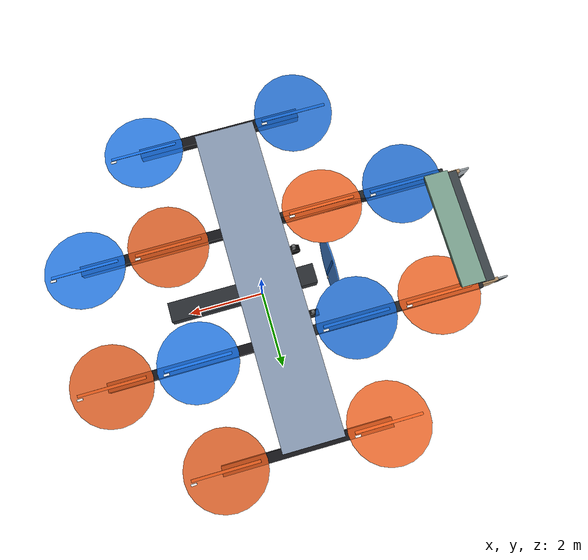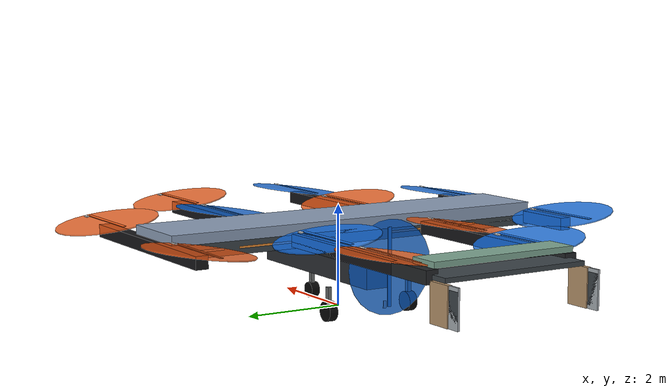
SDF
<?xml version="1.0" encoding="UTF-8"?>
<sdf version='1.10'>
  <model name='teTra_mk-7_EM2'>
    <pose>0 0 0.80 0 0 0</pose>
    <self_collide>false</self_collide>
    <static>false</static>

    <link name='base_link'>
      <enable_wind>true</enable_wind>
      <pose>0 0 0 0 0 0</pose>
      <inertial>
        <pose>0 0 -0.20 0 0 0</pose>
        <mass>1293.575</mass>
        <inertia>
          <ixx>4393.261707</ixx>
          <ixy>0.000000</ixy>
          <ixz>-132.340036</ixz>
          <iyy>4262.626834</iyy>
          <iyz>-0.000000</iyz>
          <izz>8561.621614</izz>
        </inertia>
      </inertial>
      <collision name='fuselage_collision'>
        <pose>0.5 0 0 0 0 0</pose>
        <geometry>
          <box>
            <size>3.8 0.5 0.45</size>
          </box>
        </geometry>
        <surface>
          <contact>
            <ode>
              <kp>100000</kp>
              <kd>1.0</kd>
              <max_vel>0.1</max_vel>
              <min_depth>0.001</min_depth>
            </ode>
          </contact>
          <friction>
            <ode />
          </friction>
        </surface>
      </collision>
      <visual name='fuselage_visual'>
        <!-- Shortened rear for pusher clearance (see fuselage_collision). 3.8 long, centered x=+0.5. -->
        <pose>0.5 0 0 0 0 0</pose>
        <geometry>
          <box>
            <size>3.8 0.5 0.45</size>
          </box>
        </geometry>
        <material>
          <ambient>0.17 0.18 0.20 1</ambient>
          <diffuse>0.17 0.18 0.20 1</diffuse>
        </material>
      </visual>
      <!-- Simple fixed landing gear from CAD: 2.1 m wheelbase, 1.8 m main track, 15 in main wheels. -->
      <collision name='main_landing_gear_left_strut_collision'>
        <pose>-1.10 0.90 -0.380 0 0 0</pose>
        <geometry><box><size>0.080 0.080 0.460</size></box></geometry>
      </collision>
      <visual name='main_landing_gear_left_strut_visual'>
        <pose>-1.10 0.90 -0.380 0 0 0</pose>
        <geometry><box><size>0.080 0.080 0.460</size></box></geometry>
        <material><ambient>0.42 0.43 0.43 1</ambient><diffuse>0.42 0.43 0.43 1</diffuse></material>
      </visual>
      <collision name='main_landing_gear_right_strut_collision'>
        <pose>-1.10 -0.90 -0.380 0 0 0</pose>
        <geometry><box><size>0.080 0.080 0.460</size></box></geometry>
      </collision>
      <visual name='main_landing_gear_right_strut_visual'>
        <pose>-1.10 -0.90 -0.380 0 0 0</pose>
        <geometry><box><size>0.080 0.080 0.460</size></box></geometry>
        <material><ambient>0.42 0.43 0.43 1</ambient><diffuse>0.42 0.43 0.43 1</diffuse></material>
      </visual>
      <collision name='nose_landing_gear_strut_collision'>
        <pose>1.00 0 -0.400 0 0 0</pose>
        <geometry><box><size>0.080 0.080 0.500</size></box></geometry>
      </collision>
      <visual name='nose_landing_gear_strut_visual'>
        <pose>1.00 0 -0.400 0 0 0</pose>
        <geometry><box><size>0.080 0.080 0.500</size></box></geometry>
        <material><ambient>0.42 0.43 0.43 1</ambient><diffuse>0.42 0.43 0.43 1</diffuse></material>
      </visual>
      <collision name='main_landing_gear_left_wheel_collision'>
        <pose>-1.10 0.90 -0.6095 1.5707963268 0 0</pose>
        <geometry><cylinder><length>0.1696</length><radius>0.1905</radius></cylinder></geometry>
        <surface>
          <contact><ode><kp>1000000</kp><kd>10</kd><max_vel>0.1</max_vel><min_depth>0.001</min_depth></ode></contact>
          <friction><ode><mu>0.8</mu><mu2>0.8</mu2></ode></friction>
        </surface>
      </collision>
      <visual name='main_landing_gear_left_wheel_visual'>
        <pose>-1.10 0.90 -0.6095 1.5707963268 0 0</pose>
        <geometry><cylinder><length>0.1696</length><radius>0.1905</radius></cylinder></geometry>
        <material><ambient>0.03 0.03 0.03 1</ambient><diffuse>0.03 0.03 0.03 1</diffuse></material>
      </visual>
      <collision name='main_landing_gear_right_wheel_collision'>
        <pose>-1.10 -0.90 -0.6095 1.5707963268 0 0</pose>
        <geometry><cylinder><length>0.1696</length><radius>0.1905</radius></cylinder></geometry>
        <surface>
          <contact><ode><kp>1000000</kp><kd>10</kd><max_vel>0.1</max_vel><min_depth>0.001</min_depth></ode></contact>
          <friction><ode><mu>0.8</mu><mu2>0.8</mu2></ode></friction>
        </surface>
      </collision>
      <visual name='main_landing_gear_right_wheel_visual'>
        <pose>-1.10 -0.90 -0.6095 1.5707963268 0 0</pose>
        <geometry><cylinder><length>0.1696</length><radius>0.1905</radius></cylinder></geometry>
        <material><ambient>0.03 0.03 0.03 1</ambient><diffuse>0.03 0.03 0.03 1</diffuse></material>
      </visual>
      <collision name='nose_landing_gear_wheel_collision'>
        <pose>1.00 0 -0.6476 1.5707963268 0 0</pose>
        <geometry><cylinder><length>0.1800</length><radius>0.1524</radius></cylinder></geometry>
        <surface>
          <contact><ode><kp>1000000</kp><kd>10</kd><max_vel>0.1</max_vel><min_depth>0.001</min_depth></ode></contact>
          <friction><ode><mu>0.8</mu><mu2>0.8</mu2></ode></friction>
        </surface>
      </collision>
      <visual name='nose_landing_gear_wheel_visual'>
        <pose>1.00 0 -0.6476 1.5707963268 0 0</pose>
        <geometry><cylinder><length>0.1800</length><radius>0.1524</radius></cylinder></geometry>
        <material><ambient>0.03 0.03 0.03 1</ambient><diffuse>0.03 0.03 0.03 1</diffuse></material>
      </visual>
      <visual name='main_wing_visual'>
        <pose>-0.135 0 0.730 0 0 0</pose>
        <geometry>
          <box>
            <size>1.500 8.000 0.255</size>
          </box>
        </geometry>
        <material>
          <ambient>0.24 0.27 0.29 1</ambient>
          <diffuse>0.24 0.27 0.29 1</diffuse>
        </material>
      </visual>
      <visual name='left_tail_boom_visual'>
        <pose>-2.789 1.45 0.760 0 0 0</pose>
        <geometry><box><size>4.708 0.240 0.240</size></box></geometry>
        <material><ambient>0.14 0.15 0.16 1</ambient>
          <diffuse>0.14 0.15 0.16 1</diffuse></material>
      </visual>
      <visual name='right_tail_boom_visual'>
        <pose>-2.789 -1.45 0.760 0 0 0</pose>
        <geometry><box><size>4.708 0.240 0.240</size></box></geometry>
        <material><ambient>0.14 0.15 0.16 1</ambient>
          <diffuse>0.14 0.15 0.16 1</diffuse></material>
      </visual>
      <visual name='horizontal_tail_visual'>
        <pose>-5.143 0 0.760 0 0 0</pose>
        <geometry>
          <box>
            <size>0.716 2.900 0.086</size>
          </box>
        </geometry>
        <material>
          <ambient>0.24 0.27 0.29 1</ambient>
          <diffuse>0.24 0.27 0.29 1</diffuse>
        </material>
      </visual>
      <visual name='right_vertical_tail_visual'>
        <pose>-5.503 1.45 0.358 0 0 0</pose>
        <geometry><box><size>0.720 0.040 0.564</size></box></geometry>
        <material><ambient>0.24 0.27 0.29 1</ambient><diffuse>0.24 0.27 0.29 1</diffuse></material>
      </visual>
      <visual name='left_vertical_tail_visual'>
        <pose>-5.503 -1.45 0.358 0 0 0</pose>
        <geometry><box><size>0.720 0.040 0.564</size></box></geometry>
        <material><ambient>0.24 0.27 0.29 1</ambient><diffuse>0.24 0.27 0.29 1</diffuse></material>
      </visual>
      <visual name='left_motor_beam_inner'>
        <pose>0 1.45 0.760 0 0 0</pose>
        <geometry>
          <box>
            <size>8.30 0.240 0.240</size>
          </box>
        </geometry>
        <material>
          <ambient>0.09 0.09 0.10 1</ambient>
          <diffuse>0.09 0.09 0.10 1</diffuse>
        </material>
      </visual>
      <visual name='right_motor_beam_inner'>
        <pose>0 -1.45 0.760 0 0 0</pose>
        <geometry>
          <box>
            <size>8.30 0.240 0.240</size>
          </box>
        </geometry>
        <material>
          <ambient>0.09 0.09 0.10 1</ambient>
          <diffuse>0.09 0.09 0.10 1</diffuse>
        </material>
      </visual>
      <visual name='left_motor_beam_outer'>
        <pose>0 4.0 0.760 0 0 0</pose>
        <geometry>
          <box>
            <size>4.10 0.240 0.240</size>
          </box>
        </geometry>
        <material>
          <ambient>0.09 0.09 0.10 1</ambient>
          <diffuse>0.09 0.09 0.10 1</diffuse>
        </material>
      </visual>
      <visual name='right_motor_beam_outer'>
        <pose>0 -4.0 0.760 0 0 0</pose>
        <geometry>
          <box>
            <size>4.10 0.240 0.240</size>
          </box>
        </geometry>
        <material>
          <ambient>0.09 0.09 0.10 1</ambient>
          <diffuse>0.09 0.09 0.10 1</diffuse>
        </material>
      </visual>
      <gravity>1</gravity>
      <velocity_decay />
      <self_collide>0</self_collide>

      <sensor name="imu_sensor" type="imu">
        <always_on>1</always_on>
        <update_rate>250</update_rate>
        <imu>
          <angular_velocity>
            <x>
              <noise type="gaussian">
                <mean>0</mean>
                <stddev>0.0003394</stddev>
                <dynamic_bias_stddev>3.8785e-05</dynamic_bias_stddev>
                <dynamic_bias_correlation_time>1000</dynamic_bias_correlation_time>
              </noise>
            </x>
            <y>
              <noise type="gaussian">
                <mean>0</mean>
                <stddev>0.0003394</stddev>
                <dynamic_bias_stddev>3.8785e-05</dynamic_bias_stddev>
                <dynamic_bias_correlation_time>1000</dynamic_bias_correlation_time>
              </noise>
            </y>
            <z>
              <noise type="gaussian">
                <mean>0</mean>
                <stddev>0.0003394</stddev>
                <dynamic_bias_stddev>3.8785e-05</dynamic_bias_stddev>
                <dynamic_bias_correlation_time>1000</dynamic_bias_correlation_time>
              </noise>
            </z>
          </angular_velocity>
          <linear_acceleration>
            <x>
              <noise type="gaussian">
                <mean>0</mean>
                <stddev>0.004</stddev>
                <dynamic_bias_stddev>0.006</dynamic_bias_stddev>
                <dynamic_bias_correlation_time>300</dynamic_bias_correlation_time>
              </noise>
            </x>
            <y>
              <noise type="gaussian">
                <mean>0</mean>
                <stddev>0.004</stddev>
                <dynamic_bias_stddev>0.006</dynamic_bias_stddev>
                <dynamic_bias_correlation_time>300</dynamic_bias_correlation_time>
              </noise>
            </y>
            <z>
              <noise type="gaussian">
                <mean>0</mean>
                <stddev>0.004</stddev>
                <dynamic_bias_stddev>0.006</dynamic_bias_stddev>
                <dynamic_bias_correlation_time>300</dynamic_bias_correlation_time>
              </noise>
            </z>
          </linear_acceleration>
        </imu>
      </sensor>
      <sensor name="air_pressure_sensor" type="air_pressure">
        <always_on>1</always_on>
        <update_rate>50</update_rate>
        <air_pressure>
          <pressure>
            <noise type="gaussian">
              <mean>0</mean>
              <stddev>0.01</stddev>
            </noise>
          </pressure>
        </air_pressure>
      </sensor>
      <sensor name="magnetometer_sensor" type="magnetometer">
        <always_on>1</always_on>
        <update_rate>100</update_rate>
        <magnetometer>
          <x>
            <noise type="gaussian">
              <stddev>0.0001</stddev>
            </noise>
          </x>
          <y>
            <noise type="gaussian">
              <stddev>0.0001</stddev>
            </noise>
          </y>
          <z>
            <noise type="gaussian">
              <stddev>0.0001</stddev>
            </noise>
          </z>
        </magnetometer>
      </sensor>
      <sensor name="navsat_sensor" type="navsat">
        <always_on>1</always_on>
        <update_rate>30</update_rate>
      </sensor>
      <!-- Chase camera on a rigid boom behind+above the vehicle (tail-chase view),
           with an on-board video recorder triggered via the /chase/record_video service. -->
      <sensor name="chase_cam" type="camera">
        <pose>-11 0 4.2 0 0.34 0</pose>
        <camera>
          <horizontal_fov>1.05</horizontal_fov>
          <image><width>1280</width><height>720</height></image>
          <clip><near>0.1</near><far>4000</far></clip>
        </camera>
        <always_on>1</always_on>
        <update_rate>25</update_rate>
        <topic>chase_cam</topic>
        <plugin filename="gz-sim-camera-video-recorder-system" name="gz::sim::systems::CameraVideoRecorder">
          <service>/chase/record_video</service>
          <fps>25</fps>
        </plugin>
      </sensor>
    </link>

    <!-- H4T130 motor (13.2 kg) + ESC (2.3 kg) masses. ESC position is assumed colocated with the motor. -->
    <link name='motor_esc_0'>
      <pose>4.03 1.45 0.93 0 0 0</pose>
      <inertial>
        <pose>0 0 0 0 0 0</pose>
        <mass>15.5</mass>
        <inertia>
          <ixx>0.07546</ixx>
          <ixy>0</ixy>
          <ixz>0</ixz>
          <iyy>0.08136</iyy>
          <iyz>0</iyz>
          <izz>0.12040</izz>
        </inertia>
      </inertial>
    </link>
    <joint name='motor_esc_0_joint' type='fixed'>
      <parent>base_link</parent>
      <child>motor_esc_0</child>
    </joint>

    <link name='motor_esc_1'>
      <pose>1.95 1.45 0.93 0 0 0</pose>
      <inertial>
        <pose>0 0 0 0 0 0</pose>
        <mass>15.5</mass>
        <inertia>
          <ixx>0.07546</ixx>
          <ixy>0</ixy>
          <ixz>0</ixz>
          <iyy>0.08136</iyy>
          <iyz>0</iyz>
          <izz>0.12040</izz>
        </inertia>
      </inertial>
    </link>
    <joint name='motor_esc_1_joint' type='fixed'>
      <parent>base_link</parent>
      <child>motor_esc_1</child>
    </joint>

    <link name='motor_esc_2'>
      <pose>1.95 4.00 0.93 0 0 0</pose>
      <inertial>
        <pose>0 0 0 0 0 0</pose>
        <mass>15.5</mass>
        <inertia>
          <ixx>0.07546</ixx>
          <ixy>0</ixy>
          <ixz>0</ixz>
          <iyy>0.08136</iyy>
          <iyz>0</iyz>
          <izz>0.12040</izz>
        </inertia>
      </inertial>
    </link>
    <joint name='motor_esc_2_joint' type='fixed'>
      <parent>base_link</parent>
      <child>motor_esc_2</child>
    </joint>

    <link name='motor_esc_3'>
      <pose>-1.95 4.00 0.93 0 0 0</pose>
      <inertial>
        <pose>0 0 0 0 0 0</pose>
        <mass>15.5</mass>
        <inertia>
          <ixx>0.07546</ixx>
          <ixy>0</ixy>
          <ixz>0</ixz>
          <iyy>0.08136</iyy>
          <iyz>0</iyz>
          <izz>0.12040</izz>
        </inertia>
      </inertial>
    </link>
    <joint name='motor_esc_3_joint' type='fixed'>
      <parent>base_link</parent>
      <child>motor_esc_3</child>
    </joint>

    <link name='motor_esc_4'>
      <pose>-1.95 1.45 0.93 0 0 0</pose>
      <inertial>
        <pose>0 0 0 0 0 0</pose>
        <mass>15.5</mass>
        <inertia>
          <ixx>0.07546</ixx>
          <ixy>0</ixy>
          <ixz>0</ixz>
          <iyy>0.08136</iyy>
          <iyz>0</iyz>
          <izz>0.12040</izz>
        </inertia>
      </inertial>
    </link>
    <joint name='motor_esc_4_joint' type='fixed'>
      <parent>base_link</parent>
      <child>motor_esc_4</child>
    </joint>

    <link name='motor_esc_5'>
      <pose>-4.03 1.45 0.93 0 0 0</pose>
      <inertial>
        <pose>0 0 0 0 0 0</pose>
        <mass>15.5</mass>
        <inertia>
          <ixx>0.07546</ixx>
          <ixy>0</ixy>
          <ixz>0</ixz>
          <iyy>0.08136</iyy>
          <iyz>0</iyz>
          <izz>0.12040</izz>
        </inertia>
      </inertial>
    </link>
    <joint name='motor_esc_5_joint' type='fixed'>
      <parent>base_link</parent>
      <child>motor_esc_5</child>
    </joint>

    <link name='motor_esc_6'>
      <pose>-4.03 -1.45 0.93 0 0 0</pose>
      <inertial>
        <pose>0 0 0 0 0 0</pose>
        <mass>15.5</mass>
        <inertia>
          <ixx>0.07546</ixx>
          <ixy>0</ixy>
          <ixz>0</ixz>
          <iyy>0.08136</iyy>
          <iyz>0</iyz>
          <izz>0.12040</izz>
        </inertia>
      </inertial>
    </link>
    <joint name='motor_esc_6_joint' type='fixed'>
      <parent>base_link</parent>
      <child>motor_esc_6</child>
    </joint>

    <link name='motor_esc_7'>
      <pose>-1.95 -1.45 0.93 0 0 0</pose>
      <inertial>
        <pose>0 0 0 0 0 0</pose>
        <mass>15.5</mass>
        <inertia>
          <ixx>0.07546</ixx>
          <ixy>0</ixy>
          <ixz>0</ixz>
          <iyy>0.08136</iyy>
          <iyz>0</iyz>
          <izz>0.12040</izz>
        </inertia>
      </inertial>
    </link>
    <joint name='motor_esc_7_joint' type='fixed'>
      <parent>base_link</parent>
      <child>motor_esc_7</child>
    </joint>

    <link name='motor_esc_8'>
      <pose>-1.95 -4.00 0.93 0 0 0</pose>
      <inertial>
        <pose>0 0 0 0 0 0</pose>
        <mass>15.5</mass>
        <inertia>
          <ixx>0.07546</ixx>
          <ixy>0</ixy>
          <ixz>0</ixz>
          <iyy>0.08136</iyy>
          <iyz>0</iyz>
          <izz>0.12040</izz>
        </inertia>
      </inertial>
    </link>
    <joint name='motor_esc_8_joint' type='fixed'>
      <parent>base_link</parent>
      <child>motor_esc_8</child>
    </joint>

    <link name='motor_esc_9'>
      <pose>1.95 -4.00 0.93 0 0 0</pose>
      <inertial>
        <pose>0 0 0 0 0 0</pose>
        <mass>15.5</mass>
        <inertia>
          <ixx>0.07546</ixx>
          <ixy>0</ixy>
          <ixz>0</ixz>
          <iyy>0.08136</iyy>
          <iyz>0</iyz>
          <izz>0.12040</izz>
        </inertia>
      </inertial>
    </link>
    <joint name='motor_esc_9_joint' type='fixed'>
      <parent>base_link</parent>
      <child>motor_esc_9</child>
    </joint>

    <link name='motor_esc_10'>
      <pose>1.95 -1.45 0.93 0 0 0</pose>
      <inertial>
        <pose>0 0 0 0 0 0</pose>
        <mass>15.5</mass>
        <inertia>
          <ixx>0.07546</ixx>
          <ixy>0</ixy>
          <ixz>0</ixz>
          <iyy>0.08136</iyy>
          <iyz>0</iyz>
          <izz>0.12040</izz>
        </inertia>
      </inertial>
    </link>
    <joint name='motor_esc_10_joint' type='fixed'>
      <parent>base_link</parent>
      <child>motor_esc_10</child>
    </joint>

    <link name='motor_esc_11'>
      <pose>4.03 -1.45 0.93 0 0 0</pose>
      <inertial>
        <pose>0 0 0 0 0 0</pose>
        <mass>15.5</mass>
        <inertia>
          <ixx>0.07546</ixx>
          <ixy>0</ixy>
          <ixz>0</ixz>
          <iyy>0.08136</iyy>
          <iyz>0</iyz>
          <izz>0.12040</izz>
        </inertia>
      </inertial>
    </link>
    <joint name='motor_esc_11_joint' type='fixed'>
      <parent>base_link</parent>
      <child>motor_esc_11</child>
    </joint>
    <link name='rotor_0'>
      <pose>4.03 1.45 0.93 -0.1396263402 0 0</pose>
      <inertial><mass>2.0</mass><inertia><ixx>0.49075</ixx><ixy>0</ixy><ixz>0</ixz><iyy>0.49075</iyy><iyz>0</iyz><izz>0.98129</izz></inertia></inertial>
      <collision name='rotor_0_collision'><geometry><cylinder><length>0.025</length><radius>0.9906</radius></cylinder></geometry></collision>
      <visual name='rotor_0_visual'><geometry><cylinder><length>0.025</length><radius>0.9906</radius></cylinder></geometry><material><ambient>0.95 0.38 0.12 0.85</ambient><diffuse>0.95 0.38 0.12 0.85</diffuse></material></visual>
      <visual name='rotor_0_blades_visual'><pose>0 0 0.020 0 0 0</pose><geometry><box><size>1.650 0.070 0.014</size></box></geometry><material><ambient>0.95 0.38 0.12 1</ambient><diffuse>0.95 0.38 0.12 1</diffuse></material></visual>
      <visual name='rotor_0_tip_marker_visual'><pose>0.780 0.090 0.030 0 0 0</pose><geometry><box><size>0.140 0.050 0.020</size></box></geometry><material><ambient>1 1 1 1</ambient><diffuse>1 1 1 1</diffuse></material></visual>
      <gravity>1</gravity><velocity_decay /><self_collide>0</self_collide>
    </link>
    <joint name='rotor_0_joint' type='revolute'>
      <child>rotor_0</child><parent>base_link</parent>
      <axis><xyz expressed_in="__model__">0 0.13917 0.99027</xyz><limit><lower>-1e+16</lower><upper>1e+16</upper></limit><dynamics><spring_reference>0</spring_reference><spring_stiffness>0</spring_stiffness></dynamics></axis>
    </joint>

    <link name='rotor_1'>
      <pose>1.95 1.45 0.93 0.1396263402 0 0</pose>
      <inertial><mass>2.0</mass><inertia><ixx>0.49075</ixx><ixy>0</ixy><ixz>0</ixz><iyy>0.49075</iyy><iyz>0</iyz><izz>0.98129</izz></inertia></inertial>
      <collision name='rotor_1_collision'><geometry><cylinder><length>0.025</length><radius>0.9906</radius></cylinder></geometry></collision>
      <visual name='rotor_1_visual'><geometry><cylinder><length>0.025</length><radius>0.9906</radius></cylinder></geometry><material><ambient>0.10 0.45 0.90 0.85</ambient><diffuse>0.10 0.45 0.90 0.85</diffuse></material></visual>
      <visual name='rotor_1_blades_visual'><pose>0 0 0.020 0 0 0</pose><geometry><box><size>1.650 0.070 0.014</size></box></geometry><material><ambient>0.10 0.45 0.90 1</ambient><diffuse>0.10 0.45 0.90 1</diffuse></material></visual>
      <visual name='rotor_1_tip_marker_visual'><pose>0.780 0.090 0.030 0 0 0</pose><geometry><box><size>0.140 0.050 0.020</size></box></geometry><material><ambient>1 1 1 1</ambient><diffuse>1 1 1 1</diffuse></material></visual>
      <gravity>1</gravity><velocity_decay /><self_collide>0</self_collide>
    </link>
    <joint name='rotor_1_joint' type='revolute'>
      <child>rotor_1</child><parent>base_link</parent>
      <axis><xyz expressed_in="__model__">0 -0.13917 0.99027</xyz><limit><lower>-1e+16</lower><upper>1e+16</upper></limit><dynamics><spring_reference>0</spring_reference><spring_stiffness>0</spring_stiffness></dynamics></axis>
    </joint>

    <link name='rotor_2'>
      <pose>1.95 4.00 0.93 -0.1396263402 0 0</pose>
      <inertial><mass>2.0</mass><inertia><ixx>0.49075</ixx><ixy>0</ixy><ixz>0</ixz><iyy>0.49075</iyy><iyz>0</iyz><izz>0.98129</izz></inertia></inertial>
      <collision name='rotor_2_collision'><geometry><cylinder><length>0.025</length><radius>0.9906</radius></cylinder></geometry></collision>
      <visual name='rotor_2_visual'><geometry><cylinder><length>0.025</length><radius>0.9906</radius></cylinder></geometry><material><ambient>0.95 0.38 0.12 0.85</ambient><diffuse>0.95 0.38 0.12 0.85</diffuse></material></visual>
      <visual name='rotor_2_blades_visual'><pose>0 0 0.020 0 0 0</pose><geometry><box><size>1.650 0.070 0.014</size></box></geometry><material><ambient>0.95 0.38 0.12 1</ambient><diffuse>0.95 0.38 0.12 1</diffuse></material></visual>
      <visual name='rotor_2_tip_marker_visual'><pose>0.780 0.090 0.030 0 0 0</pose><geometry><box><size>0.140 0.050 0.020</size></box></geometry><material><ambient>1 1 1 1</ambient><diffuse>1 1 1 1</diffuse></material></visual>
      <gravity>1</gravity><velocity_decay /><self_collide>0</self_collide>
    </link>
    <joint name='rotor_2_joint' type='revolute'>
      <child>rotor_2</child><parent>base_link</parent>
      <axis><xyz expressed_in="__model__">0 0.13917 0.99027</xyz><limit><lower>-1e+16</lower><upper>1e+16</upper></limit><dynamics><spring_reference>0</spring_reference><spring_stiffness>0</spring_stiffness></dynamics></axis>
    </joint>

    <link name='rotor_3'>
      <pose>-1.95 4.00 0.93 0.1396263402 0 0</pose>
      <inertial><mass>2.0</mass><inertia><ixx>0.49075</ixx><ixy>0</ixy><ixz>0</ixz><iyy>0.49075</iyy><iyz>0</iyz><izz>0.98129</izz></inertia></inertial>
      <collision name='rotor_3_collision'><geometry><cylinder><length>0.025</length><radius>0.9906</radius></cylinder></geometry></collision>
      <visual name='rotor_3_visual'><geometry><cylinder><length>0.025</length><radius>0.9906</radius></cylinder></geometry><material><ambient>0.95 0.38 0.12 0.85</ambient><diffuse>0.95 0.38 0.12 0.85</diffuse></material></visual>
      <visual name='rotor_3_blades_visual'><pose>0 0 0.020 0 0 0</pose><geometry><box><size>1.650 0.070 0.014</size></box></geometry><material><ambient>0.95 0.38 0.12 1</ambient><diffuse>0.95 0.38 0.12 1</diffuse></material></visual>
      <visual name='rotor_3_tip_marker_visual'><pose>0.780 0.090 0.030 0 0 0</pose><geometry><box><size>0.140 0.050 0.020</size></box></geometry><material><ambient>1 1 1 1</ambient><diffuse>1 1 1 1</diffuse></material></visual>
      <gravity>1</gravity><velocity_decay /><self_collide>0</self_collide>
    </link>
    <joint name='rotor_3_joint' type='revolute'>
      <child>rotor_3</child><parent>base_link</parent>
      <axis><xyz expressed_in="__model__">0 -0.13917 0.99027</xyz><limit><lower>-1e+16</lower><upper>1e+16</upper></limit><dynamics><spring_reference>0</spring_reference><spring_stiffness>0</spring_stiffness></dynamics></axis>
    </joint>

    <link name='rotor_4'>
      <pose>-1.95 1.45 0.93 -0.1396263402 0 0</pose>
      <inertial><mass>2.0</mass><inertia><ixx>0.49075</ixx><ixy>0</ixy><ixz>0</ixz><iyy>0.49075</iyy><iyz>0</iyz><izz>0.98129</izz></inertia></inertial>
      <collision name='rotor_4_collision'><geometry><cylinder><length>0.025</length><radius>0.9906</radius></cylinder></geometry></collision>
      <visual name='rotor_4_visual'><geometry><cylinder><length>0.025</length><radius>0.9906</radius></cylinder></geometry><material><ambient>0.10 0.45 0.90 0.85</ambient><diffuse>0.10 0.45 0.90 0.85</diffuse></material></visual>
      <visual name='rotor_4_blades_visual'><pose>0 0 0.020 0 0 0</pose><geometry><box><size>1.650 0.070 0.014</size></box></geometry><material><ambient>0.10 0.45 0.90 1</ambient><diffuse>0.10 0.45 0.90 1</diffuse></material></visual>
      <visual name='rotor_4_tip_marker_visual'><pose>0.780 0.090 0.030 0 0 0</pose><geometry><box><size>0.140 0.050 0.020</size></box></geometry><material><ambient>1 1 1 1</ambient><diffuse>1 1 1 1</diffuse></material></visual>
      <gravity>1</gravity><velocity_decay /><self_collide>0</self_collide>
    </link>
    <joint name='rotor_4_joint' type='revolute'>
      <child>rotor_4</child><parent>base_link</parent>
      <axis><xyz expressed_in="__model__">0 0.13917 0.99027</xyz><limit><lower>-1e+16</lower><upper>1e+16</upper></limit><dynamics><spring_reference>0</spring_reference><spring_stiffness>0</spring_stiffness></dynamics></axis>
    </joint>

    <link name='rotor_5'>
      <pose>-4.03 1.45 0.93 0.1396263402 0 0</pose>
      <inertial><mass>2.0</mass><inertia><ixx>0.49075</ixx><ixy>0</ixy><ixz>0</ixz><iyy>0.49075</iyy><iyz>0</iyz><izz>0.98129</izz></inertia></inertial>
      <collision name='rotor_5_collision'><geometry><cylinder><length>0.025</length><radius>0.9906</radius></cylinder></geometry></collision>
      <visual name='rotor_5_visual'><geometry><cylinder><length>0.025</length><radius>0.9906</radius></cylinder></geometry><material><ambient>0.95 0.38 0.12 0.85</ambient><diffuse>0.95 0.38 0.12 0.85</diffuse></material></visual>
      <visual name='rotor_5_blades_visual'><pose>0 0 0.020 0 0 0</pose><geometry><box><size>1.650 0.070 0.014</size></box></geometry><material><ambient>0.95 0.38 0.12 1</ambient><diffuse>0.95 0.38 0.12 1</diffuse></material></visual>
      <visual name='rotor_5_tip_marker_visual'><pose>0.780 0.090 0.030 0 0 0</pose><geometry><box><size>0.140 0.050 0.020</size></box></geometry><material><ambient>1 1 1 1</ambient><diffuse>1 1 1 1</diffuse></material></visual>
      <gravity>1</gravity><velocity_decay /><self_collide>0</self_collide>
    </link>
    <joint name='rotor_5_joint' type='revolute'>
      <child>rotor_5</child><parent>base_link</parent>
      <axis><xyz expressed_in="__model__">0 -0.13917 0.99027</xyz><limit><lower>-1e+16</lower><upper>1e+16</upper></limit><dynamics><spring_reference>0</spring_reference><spring_stiffness>0</spring_stiffness></dynamics></axis>
    </joint>

    <link name='rotor_6'>
      <pose>-4.03 -1.45 0.93 -0.1396263402 0 0</pose>
      <inertial><mass>2.0</mass><inertia><ixx>0.49075</ixx><ixy>0</ixy><ixz>0</ixz><iyy>0.49075</iyy><iyz>0</iyz><izz>0.98129</izz></inertia></inertial>
      <collision name='rotor_6_collision'><geometry><cylinder><length>0.025</length><radius>0.9906</radius></cylinder></geometry></collision>
      <visual name='rotor_6_visual'><geometry><cylinder><length>0.025</length><radius>0.9906</radius></cylinder></geometry><material><ambient>0.10 0.45 0.90 0.85</ambient><diffuse>0.10 0.45 0.90 0.85</diffuse></material></visual>
      <visual name='rotor_6_blades_visual'><pose>0 0 0.020 0 0 0</pose><geometry><box><size>1.650 0.070 0.014</size></box></geometry><material><ambient>0.10 0.45 0.90 1</ambient><diffuse>0.10 0.45 0.90 1</diffuse></material></visual>
      <visual name='rotor_6_tip_marker_visual'><pose>0.780 0.090 0.030 0 0 0</pose><geometry><box><size>0.140 0.050 0.020</size></box></geometry><material><ambient>1 1 1 1</ambient><diffuse>1 1 1 1</diffuse></material></visual>
      <gravity>1</gravity><velocity_decay /><self_collide>0</self_collide>
    </link>
    <joint name='rotor_6_joint' type='revolute'>
      <child>rotor_6</child><parent>base_link</parent>
      <axis><xyz expressed_in="__model__">0 0.13917 0.99027</xyz><limit><lower>-1e+16</lower><upper>1e+16</upper></limit><dynamics><spring_reference>0</spring_reference><spring_stiffness>0</spring_stiffness></dynamics></axis>
    </joint>

    <link name='rotor_7'>
      <pose>-1.95 -1.45 0.93 0.1396263402 0 0</pose>
      <inertial><mass>2.0</mass><inertia><ixx>0.49075</ixx><ixy>0</ixy><ixz>0</ixz><iyy>0.49075</iyy><iyz>0</iyz><izz>0.98129</izz></inertia></inertial>
      <collision name='rotor_7_collision'><geometry><cylinder><length>0.025</length><radius>0.9906</radius></cylinder></geometry></collision>
      <visual name='rotor_7_visual'><geometry><cylinder><length>0.025</length><radius>0.9906</radius></cylinder></geometry><material><ambient>0.95 0.38 0.12 0.85</ambient><diffuse>0.95 0.38 0.12 0.85</diffuse></material></visual>
      <visual name='rotor_7_blades_visual'><pose>0 0 0.020 0 0 0</pose><geometry><box><size>1.650 0.070 0.014</size></box></geometry><material><ambient>0.95 0.38 0.12 1</ambient><diffuse>0.95 0.38 0.12 1</diffuse></material></visual>
      <visual name='rotor_7_tip_marker_visual'><pose>0.780 0.090 0.030 0 0 0</pose><geometry><box><size>0.140 0.050 0.020</size></box></geometry><material><ambient>1 1 1 1</ambient><diffuse>1 1 1 1</diffuse></material></visual>
      <gravity>1</gravity><velocity_decay /><self_collide>0</self_collide>
    </link>
    <joint name='rotor_7_joint' type='revolute'>
      <child>rotor_7</child><parent>base_link</parent>
      <axis><xyz expressed_in="__model__">0 -0.13917 0.99027</xyz><limit><lower>-1e+16</lower><upper>1e+16</upper></limit><dynamics><spring_reference>0</spring_reference><spring_stiffness>0</spring_stiffness></dynamics></axis>
    </joint>

    <link name='rotor_8'>
      <pose>-1.95 -4.00 0.93 -0.1396263402 0 0</pose>
      <inertial><mass>2.0</mass><inertia><ixx>0.49075</ixx><ixy>0</ixy><ixz>0</ixz><iyy>0.49075</iyy><iyz>0</iyz><izz>0.98129</izz></inertia></inertial>
      <collision name='rotor_8_collision'><geometry><cylinder><length>0.025</length><radius>0.9906</radius></cylinder></geometry></collision>
      <visual name='rotor_8_visual'><geometry><cylinder><length>0.025</length><radius>0.9906</radius></cylinder></geometry><material><ambient>0.10 0.45 0.90 0.85</ambient><diffuse>0.10 0.45 0.90 0.85</diffuse></material></visual>
      <visual name='rotor_8_blades_visual'><pose>0 0 0.020 0 0 0</pose><geometry><box><size>1.650 0.070 0.014</size></box></geometry><material><ambient>0.10 0.45 0.90 1</ambient><diffuse>0.10 0.45 0.90 1</diffuse></material></visual>
      <visual name='rotor_8_tip_marker_visual'><pose>0.780 0.090 0.030 0 0 0</pose><geometry><box><size>0.140 0.050 0.020</size></box></geometry><material><ambient>1 1 1 1</ambient><diffuse>1 1 1 1</diffuse></material></visual>
      <gravity>1</gravity><velocity_decay /><self_collide>0</self_collide>
    </link>
    <joint name='rotor_8_joint' type='revolute'>
      <child>rotor_8</child><parent>base_link</parent>
      <axis><xyz expressed_in="__model__">0 0.13917 0.99027</xyz><limit><lower>-1e+16</lower><upper>1e+16</upper></limit><dynamics><spring_reference>0</spring_reference><spring_stiffness>0</spring_stiffness></dynamics></axis>
    </joint>

    <link name='rotor_9'>
      <pose>1.95 -4.00 0.93 0.1396263402 0 0</pose>
      <inertial><mass>2.0</mass><inertia><ixx>0.49075</ixx><ixy>0</ixy><ixz>0</ixz><iyy>0.49075</iyy><iyz>0</iyz><izz>0.98129</izz></inertia></inertial>
      <collision name='rotor_9_collision'><geometry><cylinder><length>0.025</length><radius>0.9906</radius></cylinder></geometry></collision>
      <visual name='rotor_9_visual'><geometry><cylinder><length>0.025</length><radius>0.9906</radius></cylinder></geometry><material><ambient>0.10 0.45 0.90 0.85</ambient><diffuse>0.10 0.45 0.90 0.85</diffuse></material></visual>
      <visual name='rotor_9_blades_visual'><pose>0 0 0.020 0 0 0</pose><geometry><box><size>1.650 0.070 0.014</size></box></geometry><material><ambient>0.10 0.45 0.90 1</ambient><diffuse>0.10 0.45 0.90 1</diffuse></material></visual>
      <visual name='rotor_9_tip_marker_visual'><pose>0.780 0.090 0.030 0 0 0</pose><geometry><box><size>0.140 0.050 0.020</size></box></geometry><material><ambient>1 1 1 1</ambient><diffuse>1 1 1 1</diffuse></material></visual>
      <gravity>1</gravity><velocity_decay /><self_collide>0</self_collide>
    </link>
    <joint name='rotor_9_joint' type='revolute'>
      <child>rotor_9</child><parent>base_link</parent>
      <axis><xyz expressed_in="__model__">0 -0.13917 0.99027</xyz><limit><lower>-1e+16</lower><upper>1e+16</upper></limit><dynamics><spring_reference>0</spring_reference><spring_stiffness>0</spring_stiffness></dynamics></axis>
    </joint>

    <link name='rotor_10'>
      <pose>1.95 -1.45 0.93 -0.1396263402 0 0</pose>
      <inertial><mass>2.0</mass><inertia><ixx>0.49075</ixx><ixy>0</ixy><ixz>0</ixz><iyy>0.49075</iyy><iyz>0</iyz><izz>0.98129</izz></inertia></inertial>
      <collision name='rotor_10_collision'><geometry><cylinder><length>0.025</length><radius>0.9906</radius></cylinder></geometry></collision>
      <visual name='rotor_10_visual'><geometry><cylinder><length>0.025</length><radius>0.9906</radius></cylinder></geometry><material><ambient>0.95 0.38 0.12 0.85</ambient><diffuse>0.95 0.38 0.12 0.85</diffuse></material></visual>
      <visual name='rotor_10_blades_visual'><pose>0 0 0.020 0 0 0</pose><geometry><box><size>1.650 0.070 0.014</size></box></geometry><material><ambient>0.95 0.38 0.12 1</ambient><diffuse>0.95 0.38 0.12 1</diffuse></material></visual>
      <visual name='rotor_10_tip_marker_visual'><pose>0.780 0.090 0.030 0 0 0</pose><geometry><box><size>0.140 0.050 0.020</size></box></geometry><material><ambient>1 1 1 1</ambient><diffuse>1 1 1 1</diffuse></material></visual>
      <gravity>1</gravity><velocity_decay /><self_collide>0</self_collide>
    </link>
    <joint name='rotor_10_joint' type='revolute'>
      <child>rotor_10</child><parent>base_link</parent>
      <axis><xyz expressed_in="__model__">0 0.13917 0.99027</xyz><limit><lower>-1e+16</lower><upper>1e+16</upper></limit><dynamics><spring_reference>0</spring_reference><spring_stiffness>0</spring_stiffness></dynamics></axis>
    </joint>

    <link name='rotor_11'>
      <pose>4.03 -1.45 0.93 0.1396263402 0 0</pose>
      <inertial><mass>2.0</mass><inertia><ixx>0.49075</ixx><ixy>0</ixy><ixz>0</ixz><iyy>0.49075</iyy><iyz>0</iyz><izz>0.98129</izz></inertia></inertial>
      <collision name='rotor_11_collision'><geometry><cylinder><length>0.025</length><radius>0.9906</radius></cylinder></geometry></collision>
      <visual name='rotor_11_visual'><geometry><cylinder><length>0.025</length><radius>0.9906</radius></cylinder></geometry><material><ambient>0.10 0.45 0.90 0.85</ambient><diffuse>0.10 0.45 0.90 0.85</diffuse></material></visual>
      <visual name='rotor_11_blades_visual'><pose>0 0 0.020 0 0 0</pose><geometry><box><size>1.650 0.070 0.014</size></box></geometry><material><ambient>0.10 0.45 0.90 1</ambient><diffuse>0.10 0.45 0.90 1</diffuse></material></visual>
      <visual name='rotor_11_tip_marker_visual'><pose>0.780 0.090 0.030 0 0 0</pose><geometry><box><size>0.140 0.050 0.020</size></box></geometry><material><ambient>1 1 1 1</ambient><diffuse>1 1 1 1</diffuse></material></visual>
      <gravity>1</gravity><velocity_decay /><self_collide>0</self_collide>
    </link>
    <joint name='rotor_11_joint' type='revolute'>
      <child>rotor_11</child><parent>base_link</parent>
      <axis><xyz expressed_in="__model__">0 -0.13917 0.99027</xyz><limit><lower>-1e+16</lower><upper>1e+16</upper></limit><dynamics><spring_reference>0</spring_reference><spring_stiffness>0</spring_stiffness></dynamics></axis>
    </joint>

    <!-- Pusher drive fixed mass: 2x EMRAX 268 LV +100% LC motors (44.6 kg) + 2x HBCi400800 water-cooled inverters (9.6 kg). -->
    <link name='pusher_drive'>
      <pose>-1.80 0 0.25 0 0 0</pose>
      <inertial>
        <pose>0 0 0 0 0 0</pose>
        <mass>54.2</mass>
        <inertia>
          <ixx>0.460</ixx>
          <ixy>0</ixy>
          <ixz>0</ixz>
          <iyy>0.303</iyy>
          <iyz>0</iyz>
          <izz>0.317</izz>
        </inertia>
      </inertial>
    </link>
    <joint name='pusher_drive_joint' type='fixed'>
      <parent>base_link</parent>
      <child>pusher_drive</child>
    </joint>

    <link name='rotor_12'>
      <pose>-1.80 0 0.25 0 1.5707963268 0</pose>
      <inertial><mass>2.22</mass><inertia><ixx>0.19769</ixx><ixy>0</ixy><ixz>0</ixz><iyy>0.19769</iyy><iyz>0</iyz><izz>0.39538</izz></inertia></inertial>
      <collision name='rotor_12_collision'><geometry><cylinder><length>0.025</length><radius>0.9</radius></cylinder></geometry></collision>
      <visual name='rotor_12_visual'><geometry><cylinder><length>0.025</length><radius>0.9</radius></cylinder></geometry><material><ambient>0.10 0.45 0.90 0.85</ambient><diffuse>0.10 0.45 0.90 0.85</diffuse></material></visual>
      <visual name='rotor_12_blades_visual'><pose>0 0 0.020 0 0 0</pose><geometry><box><size>1.500 0.080 0.014</size></box></geometry><material><ambient>0.10 0.45 0.90 1</ambient><diffuse>0.10 0.45 0.90 1</diffuse></material></visual>
      <visual name='rotor_12_tip_marker_visual'><pose>0.700 0.100 0.030 0 0 0</pose><geometry><box><size>0.140 0.055 0.020</size></box></geometry><material><ambient>1 1 1 1</ambient><diffuse>1 1 1 1</diffuse></material></visual>
      <gravity>1</gravity><velocity_decay /><self_collide>0</self_collide>
    </link>
    <joint name='rotor_12_joint' type='revolute'>
      <child>rotor_12</child><parent>base_link</parent>
      <axis><xyz expressed_in="__model__">1 0 0</xyz><limit><lower>-1e+16</lower><upper>1e+16</upper></limit><dynamics><spring_reference>0</spring_reference><spring_stiffness>0</spring_stiffness></dynamics></axis>
    </joint>

    <link name='left_aileron'>
      <pose relative_to='base_link'>-0.6825 3.280 0.730 0 0 0</pose>
      <inertial><mass>0.001</mass><inertia><ixx>0.00001</ixx><ixy>0</ixy><ixz>0</ixz><iyy>0.00001</iyy><iyz>0</iyz><izz>0.00001</izz></inertia></inertial>
      <collision name='left_aileron_collision'><geometry><box><size>0.405 0.640 0.040</size></box></geometry></collision>
      <visual name='left_aileron_visual'><geometry><box><size>0.405 0.640 0.040</size></box></geometry><material><ambient>0.65 0.68 0.70 1</ambient><diffuse>0.65 0.68 0.70 1</diffuse></material></visual>
    </link>
    <link name='right_aileron'>
      <pose relative_to='base_link'>-0.6825 -3.280 0.730 0 0 0</pose>
      <inertial><mass>0.001</mass><inertia><ixx>0.00001</ixx><ixy>0</ixy><ixz>0</ixz><iyy>0.00001</iyy><iyz>0</iyz><izz>0.00001</izz></inertia></inertial>
      <collision name='right_aileron_collision'><geometry><box><size>0.405 0.640 0.040</size></box></geometry></collision>
      <visual name='right_aileron_visual'><geometry><box><size>0.405 0.640 0.040</size></box></geometry><material><ambient>0.65 0.68 0.70 1</ambient><diffuse>0.65 0.68 0.70 1</diffuse></material></visual>
    </link>
    <link name='elevator'>
      <pose relative_to='base_link'>-5.379 0 0.760 0 0 0</pose>
      <inertial><mass>0.001</mass><inertia><ixx>0.00001</ixx><ixy>0</ixy><ixz>0</ixz><iyy>0.00001</iyy><iyz>0</iyz><izz>0.00001</izz></inertia></inertial>
      <collision name='elevator_collision'><geometry><box><size>0.242 2.000 0.040</size></box></geometry></collision>
      <visual name='elevator_visual'><geometry><box><size>0.242 2.000 0.040</size></box></geometry><material><ambient>0.65 0.68 0.70 1</ambient><diffuse>0.65 0.68 0.70 1</diffuse></material></visual>
    </link>
    <link name='right_rudder'>
      <pose relative_to='base_link'>-5.742 1.45 0.358 0 0 0</pose>
      <inertial><mass>0.001</mass><inertia><ixx>0.00001</ixx><ixy>0</ixy><ixz>0</ixz><iyy>0.00001</iyy><iyz>0</iyz><izz>0.00001</izz></inertia></inertial>
      <collision name='right_rudder_collision'><geometry><box><size>0.243 0.040 0.700</size></box></geometry></collision>
      <visual name='right_rudder_visual'><geometry><box><size>0.243 0.040 0.700</size></box></geometry><material><ambient>0.65 0.68 0.70 1</ambient><diffuse>0.65 0.68 0.70 1</diffuse></material></visual>
    </link>
    <link name='left_rudder'>
      <pose relative_to='base_link'>-5.742 -1.45 0.358 0 0 0</pose>
      <inertial><mass>0.001</mass><inertia><ixx>0.00001</ixx><ixy>0</ixy><ixz>0</ixz><iyy>0.00001</iyy><iyz>0</iyz><izz>0.00001</izz></inertia></inertial>
      <collision name='left_rudder_collision'><geometry><box><size>0.243 0.040 0.700</size></box></geometry></collision>
      <visual name='left_rudder_visual'><geometry><box><size>0.243 0.040 0.700</size></box></geometry><material><ambient>0.65 0.68 0.70 1</ambient><diffuse>0.65 0.68 0.70 1</diffuse></material></visual>
    </link>
    <link name='left_flap'>
      <pose relative_to='base_link'>-0.6825 1.650 0.730 0 0 0</pose>
      <inertial><mass>0.001</mass><inertia><ixx>0.00001</ixx><ixy>0</ixy><ixz>0</ixz><iyy>0.00001</iyy><iyz>0</iyz><izz>0.00001</izz></inertia></inertial>
      <collision name='left_flap_collision'><geometry><box><size>0.405 2.000 0.040</size></box></geometry></collision>
      <visual name='left_flap_visual'><geometry><box><size>0.405 2.000 0.040</size></box></geometry><material><ambient>0.90 0.55 0.20 1</ambient><diffuse>0.90 0.55 0.20 1</diffuse></material></visual>
    </link>
    <link name='right_flap'>
      <pose relative_to='base_link'>-0.6825 -1.650 0.730 0 0 0</pose>
      <inertial><mass>0.001</mass><inertia><ixx>0.00001</ixx><ixy>0</ixy><ixz>0</ixz><iyy>0.00001</iyy><iyz>0</iyz><izz>0.00001</izz></inertia></inertial>
      <collision name='right_flap_collision'><geometry><box><size>0.405 2.000 0.040</size></box></geometry></collision>
      <visual name='right_flap_visual'><geometry><box><size>0.405 2.000 0.040</size></box></geometry><material><ambient>0.90 0.55 0.20 1</ambient><diffuse>0.90 0.55 0.20 1</diffuse></material></visual>
    </link>

    <joint name='servo_0' type='revolute'>
      <parent>base_link</parent><child>left_aileron</child>
      <pose relative_to='base_link'>-0.585 3.280 0.730 0 0 0</pose>
      <axis><xyz>0 1 0</xyz><limit><lower>-0.78</lower><upper>0.78</upper></limit><dynamics><damping>1.0</damping></dynamics></axis>
      <physics><ode><implicit_spring_damper>1</implicit_spring_damper></ode></physics>
    </joint>
    <joint name='servo_1' type='revolute'>
      <parent>base_link</parent><child>right_aileron</child>
      <pose relative_to='base_link'>-0.585 -3.280 0.730 0 0 0</pose>
      <axis><xyz>0 1 0</xyz><limit><lower>-0.78</lower><upper>0.78</upper></limit><dynamics><damping>1.0</damping></dynamics></axis>
      <physics><ode><implicit_spring_damper>1</implicit_spring_damper></ode></physics>
    </joint>
    <joint name='servo_2' type='revolute'>
      <parent>base_link</parent><child>elevator</child>
      <pose relative_to='base_link'>-5.321 0 0.760 0 0 0</pose>
      <axis><xyz>0 1 0</xyz><limit><lower>-0.78</lower><upper>0.78</upper></limit><dynamics><damping>1.0</damping></dynamics></axis>
      <physics><ode><implicit_spring_damper>1</implicit_spring_damper></ode></physics>
    </joint>
    <joint name='servo_3' type='revolute'>
      <parent>base_link</parent><child>right_rudder</child>
      <pose relative_to='base_link'>-5.683 1.45 0.358 0 0 0</pose>
      <axis><xyz>0 0 1</xyz><limit><lower>-0.78</lower><upper>0.78</upper></limit><dynamics><damping>1.0</damping></dynamics></axis>
      <physics><ode><implicit_spring_damper>1</implicit_spring_damper></ode></physics>
    </joint>
    <joint name='servo_4' type='revolute'>
      <parent>base_link</parent><child>left_rudder</child>
      <pose relative_to='base_link'>-5.683 -1.45 0.358 0 0 0</pose>
      <axis><xyz>0 0 1</xyz><limit><lower>-0.78</lower><upper>0.78</upper></limit><dynamics><damping>1.0</damping></dynamics></axis>
      <physics><ode><implicit_spring_damper>1</implicit_spring_damper></ode></physics>
    </joint>
    <joint name='servo_5' type='revolute'>
      <parent>base_link</parent><child>left_flap</child>
      <pose relative_to='base_link'>-0.585 1.650 0.730 0 0 0</pose>
      <axis><xyz>0 1 0</xyz><limit><lower>-0.785</lower><upper>0.785</upper></limit><dynamics><damping>1.0</damping></dynamics></axis>
      <physics><ode><implicit_spring_damper>1</implicit_spring_damper></ode></physics>
    </joint>
    <joint name='servo_6' type='revolute'>
      <parent>base_link</parent><child>right_flap</child>
      <pose relative_to='base_link'>-0.585 -1.650 0.730 0 0 0</pose>
      <axis><xyz>0 1 0</xyz><limit><lower>-0.785</lower><upper>0.785</upper></limit><dynamics><damping>1.0</damping></dynamics></axis>
      <physics><ode><implicit_spring_damper>1</implicit_spring_damper></ode></physics>
    </joint>

    <!-- Fixed lifting surfaces (real planform, mass~=0; aero stays lumped AdvancedLiftDrag). -->
    <link name='wing_fixed'>
      <pose relative_to='base_link'>-0.135 0 0.930 0 0 0</pose>
      <inertial><mass>0.001</mass><inertia><ixx>1e-5</ixx><ixy>0</ixy><ixz>0</ixz><iyy>1e-5</iyy><iyz>0</iyz><izz>1e-5</izz></inertia></inertial>
      <visual name='wing_fixed_visual'><geometry><box><size>1.500 8.000 0.255</size></box></geometry><material><ambient>0.55 0.62 0.72 1</ambient><diffuse>0.55 0.62 0.72 1</diffuse></material></visual>
    </link>
    <joint name='wing_fixed_joint' type='fixed'><parent>base_link</parent><child>wing_fixed</child></joint>
    <link name='htail_fixed'>
      <pose relative_to='base_link'>-4.896 0 0.960 0 0 0</pose>
      <inertial><mass>0.001</mass><inertia><ixx>1e-5</ixx><ixy>0</ixy><ixz>0</ixz><iyy>1e-5</iyy><iyz>0</iyz><izz>1e-5</izz></inertia></inertial>
      <visual name='htail_fixed_visual'><geometry><box><size>0.601 2.900 0.110</size></box></geometry><material><ambient>0.50 0.66 0.58 1</ambient><diffuse>0.50 0.66 0.58 1</diffuse></material></visual>
    </link>
    <joint name='htail_fixed_joint' type='fixed'><parent>base_link</parent><child>htail_fixed</child></joint>
    <link name='vtail_r_fixed'>
      <pose relative_to='base_link'>-5.382 1.45 0.358 0 0 0</pose>
      <inertial><mass>0.001</mass><inertia><ixx>1e-5</ixx><ixy>0</ixy><ixz>0</ixz><iyy>1e-5</iyy><iyz>0</iyz><izz>1e-5</izz></inertia></inertial>
      <visual name='vtail_r_fixed_visual'><geometry><box><size>0.477 0.086 0.700</size></box></geometry><material><ambient>0.72 0.58 0.42 1</ambient><diffuse>0.72 0.58 0.42 1</diffuse></material></visual>
    </link>
    <joint name='vtail_r_fixed_joint' type='fixed'><parent>base_link</parent><child>vtail_r_fixed</child></joint>
    <link name='vtail_l_fixed'>
      <pose relative_to='base_link'>-5.382 -1.45 0.358 0 0 0</pose>
      <inertial><mass>0.001</mass><inertia><ixx>1e-5</ixx><ixy>0</ixy><ixz>0</ixz><iyy>1e-5</iyy><iyz>0</iyz><izz>1e-5</izz></inertia></inertial>
      <visual name='vtail_l_fixed_visual'><geometry><box><size>0.477 0.086 0.700</size></box></geometry><material><ambient>0.72 0.58 0.42 1</ambient><diffuse>0.72 0.58 0.42 1</diffuse></material></visual>
    </link>
    <joint name='vtail_l_fixed_joint' type='fixed'><parent>base_link</parent><child>vtail_l_fixed</child></joint>

    <plugin filename="libAirSpeedPlugin.so" name="px4::AirSpeed">
      <link_name>base_link</link_name>
    </plugin>

    <plugin filename="gz-sim-advanced-lift-drag-system" name="gz::sim::systems::AdvancedLiftDrag">
      <a0>0.0</a0>
      <CL0>-0.0020946</CL0>
      <AR>5.3333333</AR>
      <eff>0.85</eff>
      <CLa>4.7441590</CLa>
      <CD0>0.0064776</CD0>
      <Cem0>0.0038936</Cem0>
      <Cema>-0.5043557</Cema>
      <CYb>-0.0861307</CYb>
      <Cellb>-0.0150000</Cellb>
      <Cenb>0.0604482</Cenb>
      <CDp>0.0005695</CDp>
      <CYp>-0.0343598</CYp>
      <CLp>-0.0495136</CLp>
      <Cellp>-0.4800257</Cellp>
      <Cemp>0.1414532</Cemp>
      <Cenp>0.0237823</Cenp>
      <CDq>-0.0154674</CDq>
      <CYq>0.0044313</CYq>
      <CLq>7.8249252</CLq>
      <Cellq>-0.0003302</Cellq>
      <Cemq>-15.8709170</Cemq>
      <Cenq>0.0063892</Cenq>
      <CDr>0.0007566</CDr>
      <CYr>0.1323770</CYr>
      <CLr>0.0006863</CLr>
      <Cellr>0.0047377</Cellr>
      <Cemr>-0.0035497</Cemr>
      <Cenr>-0.0883947</Cenr>
      <alpha_stall>0.3391428111</alpha_stall>
      <CLa_stall>-3.85</CLa_stall>
      <CDa_stall>-0.9233984055</CDa_stall>
      <Cema_stall>0</Cema_stall>
      <cp>0 0 0</cp>
      <area>12.0</area>
      <mac>1.5</mac>
      <air_density>1.2041</air_density>
      <forward>1 0 0</forward>
      <upward>0 0 1</upward>
      <link_name>base_link</link_name>
      <num_ctrl_surfaces>0</num_ctrl_surfaces>
    </plugin>

    <plugin filename="gz-sim-lift-drag-system" name="gz::sim::systems::LiftDrag">
      <a0>0.05</a0><cla>0.0</cla><cda>0.0</cda><cma>0</cma><alpha_stall>0.34</alpha_stall><cla_stall>0.0</cla_stall><cda_stall>0.0</cda_stall><cma_stall>0</cma_stall>
      <cp>-0.585 3.280 0.730</cp><area>0.330</area><air_density>1.2041</air_density><forward>1 0 0</forward><upward>0 0 1</upward><link_name>base_link</link_name><control_joint_name>servo_0</control_joint_name><control_joint_rad_to_cl>-1.05</control_joint_rad_to_cl>
    </plugin>
    <plugin filename="gz-sim-lift-drag-system" name="gz::sim::systems::LiftDrag">
      <a0>0.05</a0><cla>0.0</cla><cda>0.0</cda><cma>0</cma><alpha_stall>0.34</alpha_stall><cla_stall>0.0</cla_stall><cda_stall>0.0</cda_stall><cma_stall>0</cma_stall>
      <cp>-0.585 -3.280 0.730</cp><area>0.330</area><air_density>1.2041</air_density><forward>1 0 0</forward><upward>0 0 1</upward><link_name>base_link</link_name><control_joint_name>servo_1</control_joint_name><control_joint_rad_to_cl>-1.05</control_joint_rad_to_cl>
    </plugin>
    <plugin filename="gz-sim-lift-drag-system" name="gz::sim::systems::LiftDrag">
      <a0>-0.2</a0><cla>0.0</cla><cda>0.0</cda><cma>0</cma><alpha_stall>0.34</alpha_stall><cla_stall>0.0</cla_stall><cda_stall>0.0</cda_stall><cma_stall>0</cma_stall>
      <cp>-5.321 0 0.760</cp><area>1.81</area><air_density>1.2041</air_density><forward>1 0 0</forward><upward>0 0 1</upward><link_name>base_link</link_name><control_joint_name>servo_2</control_joint_name><control_joint_rad_to_cl>-2.67</control_joint_rad_to_cl>
    </plugin>
    <plugin filename="gz-sim-lift-drag-system" name="gz::sim::systems::LiftDrag">
      <a0>0.0</a0><cla>0.0</cla><cda>0.0</cda><cma>0</cma><alpha_stall>0.34</alpha_stall><cla_stall>0.0</cla_stall><cda_stall>0.0</cda_stall><cma_stall>0</cma_stall>
      <cp>-5.683 1.45 0.358</cp><area>0.504</area><air_density>1.2041</air_density><forward>1 0 0</forward><upward>0 1 0</upward><link_name>base_link</link_name><control_joint_name>servo_3</control_joint_name><control_joint_rad_to_cl>1.41</control_joint_rad_to_cl>
    </plugin>
    <plugin filename="gz-sim-lift-drag-system" name="gz::sim::systems::LiftDrag">
      <a0>0.0</a0><cla>0.0</cla><cda>0.0</cda><cma>0</cma><alpha_stall>0.34</alpha_stall><cla_stall>0.0</cla_stall><cda_stall>0.0</cda_stall><cma_stall>0</cma_stall>
      <cp>-5.683 -1.45 0.358</cp><area>0.504</area><air_density>1.2041</air_density><forward>1 0 0</forward><upward>0 1 0</upward><link_name>base_link</link_name><control_joint_name>servo_4</control_joint_name><control_joint_rad_to_cl>1.41</control_joint_rad_to_cl>
    </plugin>
    <plugin filename="gz-sim-lift-drag-system" name="gz::sim::systems::LiftDrag">
      <a0>0.05</a0><cla>0.0</cla><cda>0.0</cda><cma>0</cma><alpha_stall>0.34</alpha_stall><cla_stall>0.0</cla_stall><cda_stall>0.0</cda_stall><cma_stall>0</cma_stall>
      <cp>-0.585 1.650 0.730</cp><area>3.00</area><air_density>1.2041</air_density><forward>1 0 0</forward><upward>0 0 1</upward><link_name>base_link</link_name><control_joint_name>servo_5</control_joint_name><control_joint_rad_to_cl>1.4</control_joint_rad_to_cl>
    </plugin>
    <plugin filename="gz-sim-lift-drag-system" name="gz::sim::systems::LiftDrag">
      <a0>0.05</a0><cla>0.0</cla><cda>0.0</cda><cma>0</cma><alpha_stall>0.34</alpha_stall><cla_stall>0.0</cla_stall><cda_stall>0.0</cda_stall><cma_stall>0</cma_stall>
      <cp>-0.585 -1.650 0.730</cp><area>3.00</area><air_density>1.2041</air_density><forward>1 0 0</forward><upward>0 0 1</upward><link_name>base_link</link_name><control_joint_name>servo_6</control_joint_name><control_joint_rad_to_cl>1.4</control_joint_rad_to_cl>
    </plugin>

    <plugin filename="FlaperonDrag" name="FlaperonDrag">
      <link_name>base_link</link_name>
      <air_density>1.2041</air_density>
      <cd_plate>1.0</cd_plate>
      <flap_area>0.81</flap_area>
      <baseline_rad>0.61</baseline_rad>
    </plugin>

    <plugin filename="gz-sim-joint-position-controller-system" name="gz::sim::systems::JointPositionController"><joint_name>servo_0</joint_name><sub_topic>servo_0</sub_topic><p_gain>10</p_gain><i_gain>0</i_gain><d_gain>0</d_gain></plugin>
    <plugin filename="gz-sim-joint-position-controller-system" name="gz::sim::systems::JointPositionController"><joint_name>servo_1</joint_name><sub_topic>servo_1</sub_topic><p_gain>10</p_gain><i_gain>0</i_gain><d_gain>0</d_gain></plugin>
    <plugin filename="gz-sim-joint-position-controller-system" name="gz::sim::systems::JointPositionController"><joint_name>servo_2</joint_name><sub_topic>servo_2</sub_topic><p_gain>10</p_gain><i_gain>0</i_gain><d_gain>0</d_gain></plugin>
    <plugin filename="gz-sim-joint-position-controller-system" name="gz::sim::systems::JointPositionController"><joint_name>servo_3</joint_name><sub_topic>servo_3</sub_topic><p_gain>10</p_gain><i_gain>0</i_gain><d_gain>0</d_gain></plugin>
    <plugin filename="gz-sim-joint-position-controller-system" name="gz::sim::systems::JointPositionController"><joint_name>servo_4</joint_name><sub_topic>servo_4</sub_topic><p_gain>10</p_gain><i_gain>0</i_gain><d_gain>0</d_gain></plugin>
    <plugin filename="gz-sim-joint-position-controller-system" name="gz::sim::systems::JointPositionController"><joint_name>servo_5</joint_name><sub_topic>servo_5</sub_topic><p_gain>10</p_gain><i_gain>0</i_gain><d_gain>0</d_gain></plugin>
    <plugin filename="gz-sim-joint-position-controller-system" name="gz::sim::systems::JointPositionController"><joint_name>servo_6</joint_name><sub_topic>servo_6</sub_topic><p_gain>10</p_gain><i_gain>0</i_gain><d_gain>0</d_gain></plugin>

    <plugin filename="gz-sim-multicopter-motor-model-system" name="gz::sim::systems::MulticopterMotorModel"><jointName>rotor_0_joint</jointName><linkName>rotor_0</linkName><turningDirection>cw</turningDirection><timeConstantUp>0.17</timeConstantUp><timeConstantDown>0.18</timeConstantDown><maxRotVelocity>249.23</maxRotVelocity><motorConstant>0.0371333</motorConstant><momentConstant>0.0878447</momentConstant><commandSubTopic>command/motor_speed</commandSubTopic><motorNumber>0</motorNumber><rotorDragCoefficient>8.06428e-05</rotorDragCoefficient><rollingMomentCoefficient>1e-06</rollingMomentCoefficient><rotorVelocitySlowdownSim>10</rotorVelocitySlowdownSim><motorType>velocity</motorType></plugin>
    <plugin filename="gz-sim-multicopter-motor-model-system" name="gz::sim::systems::MulticopterMotorModel"><jointName>rotor_1_joint</jointName><linkName>rotor_1</linkName><turningDirection>ccw</turningDirection><timeConstantUp>0.17</timeConstantUp><timeConstantDown>0.18</timeConstantDown><maxRotVelocity>249.23</maxRotVelocity><motorConstant>0.0371333</motorConstant><momentConstant>0.0878447</momentConstant><commandSubTopic>command/motor_speed</commandSubTopic><motorNumber>1</motorNumber><rotorDragCoefficient>8.06428e-05</rotorDragCoefficient><rollingMomentCoefficient>1e-06</rollingMomentCoefficient><rotorVelocitySlowdownSim>10</rotorVelocitySlowdownSim><motorType>velocity</motorType></plugin>
    <plugin filename="gz-sim-multicopter-motor-model-system" name="gz::sim::systems::MulticopterMotorModel"><jointName>rotor_2_joint</jointName><linkName>rotor_2</linkName><turningDirection>cw</turningDirection><timeConstantUp>0.17</timeConstantUp><timeConstantDown>0.18</timeConstantDown><maxRotVelocity>249.23</maxRotVelocity><motorConstant>0.0371333</motorConstant><momentConstant>0.0878447</momentConstant><commandSubTopic>command/motor_speed</commandSubTopic><motorNumber>2</motorNumber><rotorDragCoefficient>8.06428e-05</rotorDragCoefficient><rollingMomentCoefficient>1e-06</rollingMomentCoefficient><rotorVelocitySlowdownSim>10</rotorVelocitySlowdownSim><motorType>velocity</motorType></plugin>
    <plugin filename="gz-sim-multicopter-motor-model-system" name="gz::sim::systems::MulticopterMotorModel"><jointName>rotor_3_joint</jointName><linkName>rotor_3</linkName><turningDirection>cw</turningDirection><timeConstantUp>0.17</timeConstantUp><timeConstantDown>0.18</timeConstantDown><maxRotVelocity>249.23</maxRotVelocity><motorConstant>0.0371333</motorConstant><momentConstant>0.0878447</momentConstant><commandSubTopic>command/motor_speed</commandSubTopic><motorNumber>3</motorNumber><rotorDragCoefficient>8.06428e-05</rotorDragCoefficient><rollingMomentCoefficient>1e-06</rollingMomentCoefficient><rotorVelocitySlowdownSim>10</rotorVelocitySlowdownSim><motorType>velocity</motorType></plugin>
    <plugin filename="gz-sim-multicopter-motor-model-system" name="gz::sim::systems::MulticopterMotorModel"><jointName>rotor_4_joint</jointName><linkName>rotor_4</linkName><turningDirection>ccw</turningDirection><timeConstantUp>0.17</timeConstantUp><timeConstantDown>0.18</timeConstantDown><maxRotVelocity>249.23</maxRotVelocity><motorConstant>0.0371333</motorConstant><momentConstant>0.0878447</momentConstant><commandSubTopic>command/motor_speed</commandSubTopic><motorNumber>4</motorNumber><rotorDragCoefficient>8.06428e-05</rotorDragCoefficient><rollingMomentCoefficient>1e-06</rollingMomentCoefficient><rotorVelocitySlowdownSim>10</rotorVelocitySlowdownSim><motorType>velocity</motorType></plugin>
    <plugin filename="gz-sim-multicopter-motor-model-system" name="gz::sim::systems::MulticopterMotorModel"><jointName>rotor_5_joint</jointName><linkName>rotor_5</linkName><turningDirection>cw</turningDirection><timeConstantUp>0.17</timeConstantUp><timeConstantDown>0.18</timeConstantDown><maxRotVelocity>249.23</maxRotVelocity><motorConstant>0.0371333</motorConstant><momentConstant>0.0878447</momentConstant><commandSubTopic>command/motor_speed</commandSubTopic><motorNumber>5</motorNumber><rotorDragCoefficient>8.06428e-05</rotorDragCoefficient><rollingMomentCoefficient>1e-06</rollingMomentCoefficient><rotorVelocitySlowdownSim>10</rotorVelocitySlowdownSim><motorType>velocity</motorType></plugin>
    <plugin filename="gz-sim-multicopter-motor-model-system" name="gz::sim::systems::MulticopterMotorModel"><jointName>rotor_6_joint</jointName><linkName>rotor_6</linkName><turningDirection>ccw</turningDirection><timeConstantUp>0.17</timeConstantUp><timeConstantDown>0.18</timeConstantDown><maxRotVelocity>249.23</maxRotVelocity><motorConstant>0.0371333</motorConstant><momentConstant>0.0878447</momentConstant><commandSubTopic>command/motor_speed</commandSubTopic><motorNumber>6</motorNumber><rotorDragCoefficient>8.06428e-05</rotorDragCoefficient><rollingMomentCoefficient>1e-06</rollingMomentCoefficient><rotorVelocitySlowdownSim>10</rotorVelocitySlowdownSim><motorType>velocity</motorType></plugin>
    <plugin filename="gz-sim-multicopter-motor-model-system" name="gz::sim::systems::MulticopterMotorModel"><jointName>rotor_7_joint</jointName><linkName>rotor_7</linkName><turningDirection>cw</turningDirection><timeConstantUp>0.17</timeConstantUp><timeConstantDown>0.18</timeConstantDown><maxRotVelocity>249.23</maxRotVelocity><motorConstant>0.0371333</motorConstant><momentConstant>0.0878447</momentConstant><commandSubTopic>command/motor_speed</commandSubTopic><motorNumber>7</motorNumber><rotorDragCoefficient>8.06428e-05</rotorDragCoefficient><rollingMomentCoefficient>1e-06</rollingMomentCoefficient><rotorVelocitySlowdownSim>10</rotorVelocitySlowdownSim><motorType>velocity</motorType></plugin>
    <plugin filename="gz-sim-multicopter-motor-model-system" name="gz::sim::systems::MulticopterMotorModel"><jointName>rotor_8_joint</jointName><linkName>rotor_8</linkName><turningDirection>ccw</turningDirection><timeConstantUp>0.17</timeConstantUp><timeConstantDown>0.18</timeConstantDown><maxRotVelocity>249.23</maxRotVelocity><motorConstant>0.0371333</motorConstant><momentConstant>0.0878447</momentConstant><commandSubTopic>command/motor_speed</commandSubTopic><motorNumber>8</motorNumber><rotorDragCoefficient>8.06428e-05</rotorDragCoefficient><rollingMomentCoefficient>1e-06</rollingMomentCoefficient><rotorVelocitySlowdownSim>10</rotorVelocitySlowdownSim><motorType>velocity</motorType></plugin>
    <plugin filename="gz-sim-multicopter-motor-model-system" name="gz::sim::systems::MulticopterMotorModel"><jointName>rotor_9_joint</jointName><linkName>rotor_9</linkName><turningDirection>ccw</turningDirection><timeConstantUp>0.17</timeConstantUp><timeConstantDown>0.18</timeConstantDown><maxRotVelocity>249.23</maxRotVelocity><motorConstant>0.0371333</motorConstant><momentConstant>0.0878447</momentConstant><commandSubTopic>command/motor_speed</commandSubTopic><motorNumber>9</motorNumber><rotorDragCoefficient>8.06428e-05</rotorDragCoefficient><rollingMomentCoefficient>1e-06</rollingMomentCoefficient><rotorVelocitySlowdownSim>10</rotorVelocitySlowdownSim><motorType>velocity</motorType></plugin>
    <plugin filename="gz-sim-multicopter-motor-model-system" name="gz::sim::systems::MulticopterMotorModel"><jointName>rotor_10_joint</jointName><linkName>rotor_10</linkName><turningDirection>cw</turningDirection><timeConstantUp>0.17</timeConstantUp><timeConstantDown>0.18</timeConstantDown><maxRotVelocity>249.23</maxRotVelocity><motorConstant>0.0371333</motorConstant><momentConstant>0.0878447</momentConstant><commandSubTopic>command/motor_speed</commandSubTopic><motorNumber>10</motorNumber><rotorDragCoefficient>8.06428e-05</rotorDragCoefficient><rollingMomentCoefficient>1e-06</rollingMomentCoefficient><rotorVelocitySlowdownSim>10</rotorVelocitySlowdownSim><motorType>velocity</motorType></plugin>
    <plugin filename="gz-sim-multicopter-motor-model-system" name="gz::sim::systems::MulticopterMotorModel"><jointName>rotor_11_joint</jointName><linkName>rotor_11</linkName><turningDirection>ccw</turningDirection><timeConstantUp>0.17</timeConstantUp><timeConstantDown>0.18</timeConstantDown><maxRotVelocity>249.23</maxRotVelocity><motorConstant>0.0371333</motorConstant><momentConstant>0.0878447</momentConstant><commandSubTopic>command/motor_speed</commandSubTopic><motorNumber>11</motorNumber><rotorDragCoefficient>8.06428e-05</rotorDragCoefficient><rollingMomentCoefficient>1e-06</rollingMomentCoefficient><rotorVelocitySlowdownSim>10</rotorVelocitySlowdownSim><motorType>velocity</motorType></plugin>
    <plugin filename="gz-sim-multicopter-motor-model-system" name="gz::sim::systems::MulticopterMotorModel"><jointName>rotor_12_joint</jointName><linkName>rotor_12</linkName><turningDirection>ccw</turningDirection><timeConstantUp>0.22</timeConstantUp><timeConstantDown>0.30</timeConstantDown><maxRotVelocity>251.327</maxRotVelocity><motorConstant>0.0443472</motorConstant><momentConstant>0.169572</momentConstant><commandSubTopic>command/motor_speed</commandSubTopic><motorNumber>12</motorNumber><rotorDragCoefficient>8.06428e-05</rotorDragCoefficient><rollingMomentCoefficient>1e-06</rollingMomentCoefficient><rotorVelocitySlowdownSim>10</rotorVelocitySlowdownSim><motorType>velocity</motorType></plugin>
  </model>
</sdf>
